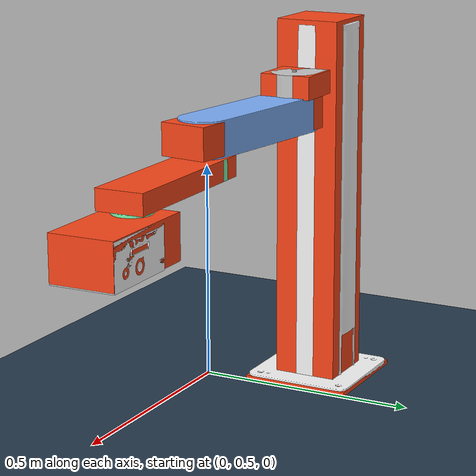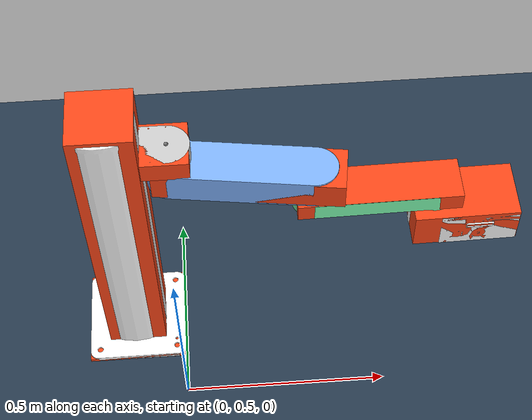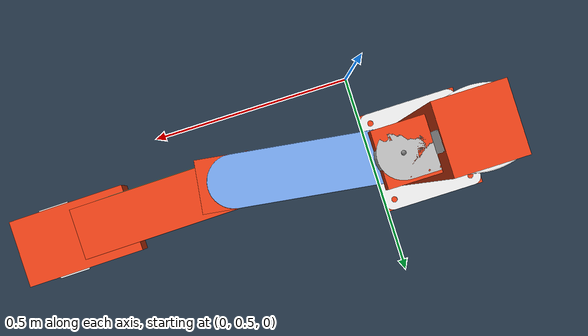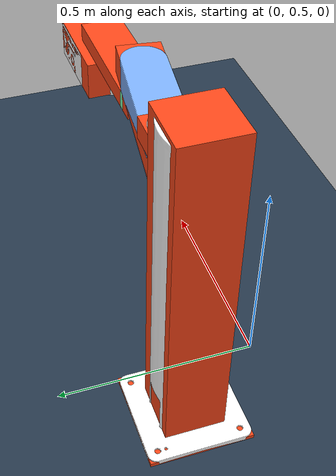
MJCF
<mujoco model="ur3">
  <default>
    <default class="robot">
      <default class="motor">
        <joint damping="10" armature="0.1" />   <!-- 关节基本阻尼 -->
        <position ctrlrange="-100 100" kp="800" kv="50" forcerange="-100 100" />
        <!-- ctrlrange: 控制信号范围（通常对应力矩或位置，取决于控制类型）
           kp: 位置误差比例系数
           kv: 速度阻尼系数
           加上 forcerange 限制最大力矩，防止过冲 -->
      </default>
      <default class="visual">
        <geom material="visualgeom" contype="0" conaffinity="0" group="2" />
      </default>
      <default class="collision">
        <geom material="collision_material" condim="3" contype="0" conaffinity="1" priority="1"
          group="1" solref="0.005 1" solimp="0.99 0.999 1e-05" friction="1 0.01 0.01" />
      </default>
    </default>
  </default>

  <compiler angle="radian" />

  <asset>
    <!-- 天空盒背景 -->
    <texture type="skybox" builtin="gradient" rgb1="0.3 0.5 0.7" rgb2="0 0 0" width="512"
      height="512" />
    <!-- 方格地板纹理 -->
    <texture name="texplane" type="2d" builtin="checker" rgb1=".2 .3 .4" rgb2=".1 0.15 0.2"
      width="512" height="512" mark="cross" markrgb=".8 .8 .8" />
    <!-- 地板材质 -->
    <material name="matplane" reflectance="0.3" texture="texplane" texrepeat="1 1" texuniform="true" />
    <material name="base_link_white" rgba="1 1 1 1" />
    <material name="link1_light_grey" rgba="0.8 0.8 0.8 1" />
    <material name="link2_light_blue" rgba="0.5 0.7 1 1" />
    <material name="link3_light_green" rgba="0.5 1 0.7 1" />
    <material name="default_material" rgba="0.7 0.7 0.7 1" />
    <material name="collision_material" rgba="1.0 0.28 0.1 0.9" />
    <mesh name="base_link.obj" file="../meshes/base_link.obj" />
    <mesh name="link1.obj" file="../meshes/link1.obj" />
    <mesh name="link2.obj" file="../meshes/link2.obj" />
    <mesh name="link3.obj" file="../meshes/link3.obj" />
    <mesh name="gripper.obj" file="../meshes/gripper.obj" />
  </asset>

  <worldbody>
    <!-- 全局光照 -->
    <light directional="true" diffuse=".8 .8 .8" specular=".2 .2 .2" pos="0 0 5" dir="0 0 -1" />
    <!-- 添加无尽的物理地板平面 -->
    <geom name="floor" type="plane" size="0 0 1" material="matplane" condim="3" />

    <body name="base_link" pos="0.00000000 0.60000000 0.00000000" quat="1 0 0 0" childclass="robot">
      <geom name="base_link_collision_0" pos="-0.125 0.125 0.425" quat="1.0 0.0 0.0 0.0" type="box"
        size="0.0725 0.0725 0.415" class="collision" />
      <geom name="base_link_collision_1" pos="-0.125 0.125 0.005" quat="1.0 0.0 0.0 0.0" type="box"
        size="0.125 0.125 0.005" class="collision" />
      <geom name="base_link_visual" pos="0 0 0" quat="0.7071054825112363 0.7071080798594735 0.0 0.0"
        material="base_link_white" type="mesh" mesh="base_link.obj" class="visual" />
      <body name="link1" pos="-0.14573 0.183 0.7339"
        quat="-0.500003673194984 0.4999963267847773 -0.5000018365958054 -0.4999981633907021"
        gravcomp="1">
        <joint name="joint1" type="slide" ref="0.0" class="motor" range="0 0.41" axis="1 0 0"
          damping="100" armature="1" />
        <inertial pos="0.028429 -0.10525 -0.058001"
          quat="0.01967413563049977 0.019651861197668128 -0.7068373938566186 -0.7068292802258859"
          mass="1.0689" diaginertia="0.0042871312 0.0037421 0.0011385688" />
        <geom name="link1_collision" pos="0.02575 -0.1005 -0.058"
          quat="0.4999981633974483 0.49999999999662686 0.5000018366025516 0.49999999999662686"
          type="box" size="0.1005 0.058 0.02575" class="collision" />
        <geom name="link1_visual" pos="0 0 0" quat="1.0 0.0 0.0 0.0" material="link1_light_grey"
          type="mesh" mesh="link1.obj" class="visual" />
        <body name="link2" pos="0.048996 -0.153 -0.06"
          quat="0.5330814320133039 -0.46456686007923853 0.5330848449120267 -0.4645668600792385"
          gravcomp="1">
          <joint name="joint2" type="hinge" ref="0.0" class="motor" range="-1.571 1.571"
            axis="0 0 -1" />
          <inertial pos="0.14475 -3.0463E-07 0.041307"
            quat="-0.7060863695927564 -0.006120118491469557 -0.7080728260558069 0.006120116527857341"
            mass="2.5831" diaginertia="0.0278951911 0.026394 0.0036790089" />
          <geom name="link2_collision" pos="0.18 0 0.03925" quat="1.0 0.0 0.0 0.0" type="box"
            size="0.2155 0.053 0.035" class="collision" />
          <geom name="link2_visual" pos="0 0 0" quat="1.0 0.0 0.0 0.0" material="link2_light_blue"
            type="mesh" mesh="link2.obj" class="visual" />
          <body name="link3" pos="0.325 0 0.0815"
            quat="0.07632203524029463 0.0 0.0 0.9970832196646272" gravcomp="1">
            <joint name="joint3" type="hinge" ref="0.0" class="motor" range="-2.862 2.862"
              axis="0 0 -1" />
            <inertial pos="-0.1088 -0.002117 0.025856"
              quat="0.04722380799708451 0.6974214421872765 0.04706415529887669 -0.7135532280227433"
              mass="1.2392" diaginertia="0.0104197785 0.0094998372 0.0012116843" />
            <geom name="link3_collision" pos="-0.145 0 0.0225" quat="1.0 0.0 0.0 0.0" type="box"
              size="0.1875 0.0525 0.0225" class="collision" />
            <geom name="link3_visual" pos="0 0 0" quat="1.0 0.0 0.0 0.0"
              material="link3_light_green" type="mesh" mesh="link3.obj" class="visual" />
            <body name="tool_link" pos="0.0 0.0 0.0" quat="1.0 0.0 0.0 0.0">
              <body name="gripper" pos="-0.255 0.0 0.0569"
                quat="-2.5973434669646147e-06 2.597353007557415e-06 -0.7071080798547033 0.707105482506466"
                gravcomp="1">
                <joint name="joint_tool_gripper" type="hinge" ref="0.0" class="motor"
                  range="-3.14 3.14" axis="0 1 0" />
                <inertial pos="-0.00983151017542139 0.0599333115427437 -0.00175977245523265"
                  quat="0.49052611595707657 0.4913835391698289 0.5094157804067029 0.5083521512393036"
                  mass="0.77675171638187" diaginertia="0.0040448627 0.0028051639 0.0018509871" />
                <geom name="gripper_collision" pos="0.091 -0.04875 0" quat="1.0 0.0 0.0 0.0"
                  type="box" size="0.121 0.04875 0.07" class="collision" />
                <geom name="gripper_visual" pos="0.121 -0.1 0" quat="1.0 0.0 0.0 0.0"
                  material="base_link_white" type="mesh" mesh="gripper.obj" class="visual" />
                <site name="ee_site" pos="0.02 0 0.005" />
              </body>
            </body>
          </body>
        </body>
      </body>
      <site name="base_link_site" pos="0 0 0" quat="1 0 0 0" />
      <!-- 自定义参考原点：所有路径规划坐标均相对于此点。修改 pos 即可改变原点在世界坐标系中的位置 -->
      <site name="reference_origin" pos="0.007 0.125 0.7339" />
      <camera name="front_camera" mode="track" fovy="90.0"
        quat="4.329780281177467e-17 4.329780281177466e-17 0.7071067811865475 0.7071067811865476"
        pos="0.0 2.0 0.5" />
      <camera name="side_camera" mode="track" fovy="90.0"
        quat="-0.5 -0.4999999999999999 0.5 0.5000000000000001" pos="-2.0 0.0 0.5" />
    </body>
  </worldbody>

  <actuator>
    <position name="joint1_ctrl" joint="joint1" class="motor" ctrlrange="0 0.41" />
    <position name="joint2_ctrl" joint="joint2" class="motor" ctrlrange="-1.571 1.571" />
    <position name="joint3_ctrl" joint="joint3" class="motor" ctrlrange="-2.862 2.862" />
    <position name="joint_tool_gripper_ctrl" joint="joint_tool_gripper" class="motor"
      ctrlrange="-3.14 3.14" />
  </actuator>

  <contact>
    <exclude body1="base_link" body2="link1" />
    <exclude body1="link1" body2="link2" />
    <exclude body1="link2" body2="link3" />
  </contact>

  <sensor>
    <framepos name="base_link_site_pos" objtype="site" objname="base_link_site" />
    <framequat name="base_link_site_quat" objtype="site" objname="base_link_site" />
    <framelinvel name="base_link_site_linvel" objtype="site" objname="base_link_site" />
    <frameangvel name="base_link_site_angvel" objtype="site" objname="base_link_site" />
    <velocimeter name="base_link_site_vel" site="base_link_site" />
  </sensor>
</mujoco>
